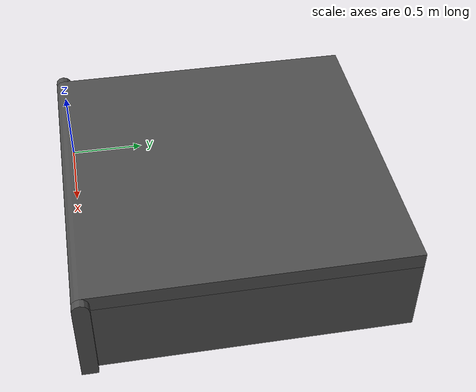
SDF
<sdf version='1.6'>
  <model name='pv_car'>
    <link name='base_link'>
      <pose frame=''>0 0 0.6 0 -0 0</pose>
      <inertial>
        <pose frame=''>1 0.94721 -0.29987 0 -0 0</pose>
        <mass>2005.9</mass>
        <inertia>
          <ixx>713.82</ixx>
          <ixy>7.671e-14</ixy>
          <ixz>2.4162e-14</ixz>
          <iyy>714.71</iyy>
          <iyz>0.24973</iyz>
          <izz>1344.8</izz>
        </inertia>
      </inertial>
      <collision name='base_link_collision'>
        <pose frame=''>0 0 0 0 -0 0</pose>
        <geometry>
          <mesh>
            <scale>1 1 1</scale>
            <uri>model://pv_car/meshes/base_link.STL</uri>
          </mesh>
        </geometry>
      </collision>
      <visual name='base_link_visual'>
        <pose frame=''>0 0 0 0 -0 0</pose>
        <geometry>
          <mesh>
            <scale>1 1 1</scale>
            <uri>model://pv_car/meshes/base_link.STL</uri>
          </mesh>
        </geometry>
        <material>
          <script>
            <name>Gazebo/DarkGrey</name>
            <uri>file://media/materials/scripts/gazebo.material</uri>
          </script>
        </material>
      </visual>
      <kinematic>true</kinematic>
    </link>
    <joint name='joint_fix' type='fixed'>
      <child>base_link</child>
      <parent>world</parent>
    </joint>
    <link name='link1'>
      <pose frame=''>0 0 0.6 0 -0 0</pose>
      <inertial>
        <pose frame=''>1 0.95533 -0 0 -0 0</pose>
        <mass>397.85</mass>
        <inertia>
          <ixx>131.55</ixx>
          <ixy>-1.7892e-14</ixy>
          <ixz>-4.8208e-16</ixz>
          <iyy>132.95</iyy>
          <iyz>1.4924e-15</iyz>
          <izz>263.84</izz>
        </inertia>
      </inertial>
      <collision name='link1_collision'>
        <pose frame=''>0 0 0 0 -0 0</pose>
        <geometry>
          <mesh>
            <scale>1 1 1</scale>
            <uri>model://pv_car/meshes/link1.STL</uri>
          </mesh>
        </geometry>
          <surface>
            <friction>
              <ode>
                <mu>80000</mu>
                <mu2>80000</mu2>
              </ode>
            </friction>
          </surface>
      </collision>
      <visual name='link1_visual'>
        <pose frame=''>0 0 0 0 -0 0</pose>
        <geometry>
          <mesh>
            <scale>1 1 1</scale>
            <uri>model://pv_car/meshes/link1.STL</uri>
          </mesh>
        </geometry>
        <material>
          <script>
            <name>Gazebo/DarkGrey</name>
            <uri>file://media/materials/scripts/gazebo.material</uri>
          </script>
        </material>
      </visual>
    </link>
    <joint name='pv_car_joint1' type='revolute'>
      <child>link1</child>
      <parent>base_link</parent>
      <axis>
        <xyz>-1 0 0</xyz>
        <limit>
          <lower>-0.5</lower>
          <upper>-0.5</upper>
          <effort>10</effort>
          <velocity>10</velocity>
          <effort>0</effort>
          <velocity>0</velocity>
        </limit>
        <dynamics>
          <spring_reference>0</spring_reference>
          <spring_stiffness>0</spring_stiffness>
        </dynamics>
        <use_parent_model_frame>0</use_parent_model_frame>
      </axis>
    </joint>
  </model>
</sdf>
